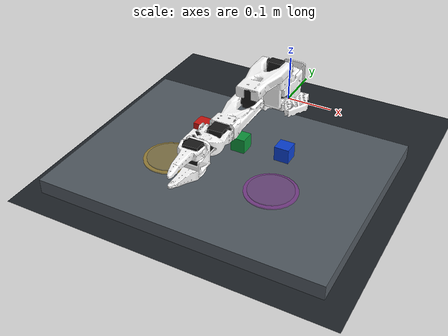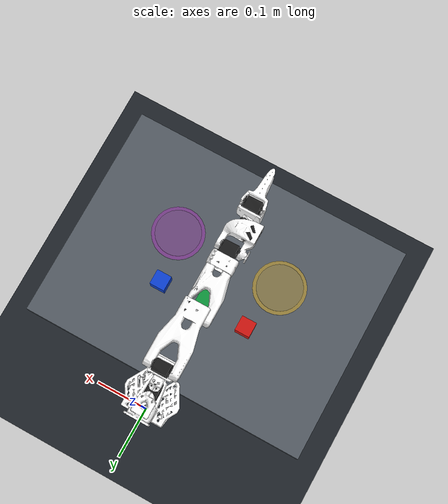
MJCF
<mujoco model="SO-ARM100 language pick-place">
  <include file="so_arm100.xml"/>

  <option timestep="0.002" integrator="implicitfast" gravity="0 0 -9.81">
    <flag contact="enable"/>
  </option>

  <visual>
    <headlight diffuse="0.55 0.55 0.55" ambient="0.25 0.25 0.25" specular="0.1 0.1 0.1"/>
    <global offwidth="256" offheight="256"/>
  </visual>

  <asset>
    <texture name="sky" type="skybox" builtin="gradient"
      rgb1="0.50 0.62 0.72" rgb2="0.94 0.96 0.98" width="256" height="1536"/>
    <texture name="table_tex" type="2d" builtin="checker" mark="edge"
      rgb1="0.28 0.31 0.34" rgb2="0.36 0.39 0.42" markrgb="0.08 0.08 0.08"
      width="256" height="256"/>
    <material name="table_mat" texture="table_tex" texrepeat="4 4" texuniform="true"
      roughness="0.8"/>
    <material name="red_mat" rgba="0.80 0.08 0.06 1" roughness="0.65"/>
    <material name="green_mat" rgba="0.05 0.58 0.23 1" roughness="0.65"/>
    <material name="blue_mat" rgba="0.04 0.25 0.82 1" roughness="0.65"/>
    <material name="left_goal_mat" rgba="0.95 0.72 0.08 0.45"/>
    <material name="right_goal_mat" rgba="0.68 0.14 0.76 0.45"/>
  </asset>

  <default>
    <default class="task_cube">
      <geom type="box" size="0.015 0.015 0.015" mass="0.025"
        friction="1.3 0.01 0.001" solref="0.008 1" solimp="0.95 0.99 0.001"/>
    </default>
  </default>

  <worldbody>
    <light name="key_light" pos="-0.25 -0.20 0.65" dir="0.3 -0.1 -1"
      directional="true" diffuse="0.75 0.72 0.68"/>
    <light name="fill_light" pos="0.35 -0.45 0.45" dir="-0.4 0.3 -0.8"
      directional="true" diffuse="0.35 0.40 0.48"/>
    <camera name="front" pos="0 -0.72 0.53" xyaxes="1 0 0 0 0.69 0.724"
      fovy="52"/>
    <camera name="wrist_view" pos="0 -0.45 0.20" xyaxes="1 0 0 0 0.45 0.89"
      fovy="55"/>

    <geom name="floor" type="plane" size="1 1 0.05" pos="0 0 -0.036"
      rgba="0.12 0.14 0.16 1" friction="1 0.005 0.0001"/>
    <geom name="table" type="box" size="0.29 0.22 0.015" pos="0 -0.275 -0.015"
      material="table_mat" friction="1.2 0.01 0.001"/>

    <geom name="left_goal" type="cylinder" size="0.052 0.0015"
      pos="-0.11 -0.32 0.002" material="left_goal_mat" contype="0" conaffinity="0"/>
    <geom name="right_goal" type="cylinder" size="0.052 0.0015"
      pos="0.11 -0.32 0.002" material="right_goal_mat" contype="0" conaffinity="0"/>
    <site name="left_goal_site" type="cylinder" size="0.045 0.002"
      pos="-0.11 -0.32 0.004" rgba="0.95 0.72 0.08 0.3"/>
    <site name="right_goal_site" type="cylinder" size="0.045 0.002"
      pos="0.11 -0.32 0.004" rgba="0.68 0.14 0.76 0.3"/>

    <body name="red_cube" pos="-0.09 -0.22 0.022">
      <freejoint name="red_cube_joint"/>
      <geom name="red_cube_geom" class="task_cube" material="red_mat"/>
    </body>
    <body name="green_cube" pos="0 -0.23 0.022">
      <freejoint name="green_cube_joint"/>
      <geom name="green_cube_geom" class="task_cube" material="green_mat"/>
    </body>
    <body name="blue_cube" pos="0.09 -0.22 0.022">
      <freejoint name="blue_cube_joint"/>
      <geom name="blue_cube_geom" class="task_cube" material="blue_mat"/>
    </body>
  </worldbody>

  <equality>
    <weld name="assist_red" body1="grasp_anchor" body2="red_cube"
      relpose="0 0 0 1 0 0 0" active="false" solref="0.02 1"/>
    <weld name="assist_green" body1="grasp_anchor" body2="green_cube"
      relpose="0 0 0 1 0 0 0" active="false" solref="0.02 1"/>
    <weld name="assist_blue" body1="grasp_anchor" body2="blue_cube"
      relpose="0 0 0 1 0 0 0" active="false" solref="0.02 1"/>
  </equality>
</mujoco>

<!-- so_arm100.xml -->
<mujoco model="so_arm100">
  <compiler angle="radian" meshdir="assets/"/>

  <option cone="elliptic" impratio="10"/>

  <asset>
    <material name="white" rgba="1 1 1 1"/>
    <material name="black" rgba="0.1 0.1 0.1 1"/>

    <mesh name="Base" file="Base.stl"/>
    <mesh name="Base_Motor" file="Base_Motor.stl"/>
    <mesh name="Rotation_Pitch" file="Rotation_Pitch.stl"/>
    <mesh name="Rotation_Pitch_Motor" file="Rotation_Pitch_Motor.stl"/>
    <mesh name="Upper_Arm" file="Upper_Arm.stl"/>
    <mesh name="Upper_Arm_Motor" file="Upper_Arm_Motor.stl"/>
    <mesh name="Lower_Arm" file="Lower_Arm.stl"/>
    <mesh name="Lower_Arm_Motor" file="Lower_Arm_Motor.stl"/>
    <mesh name="Wrist_Pitch_Roll" file="Wrist_Pitch_Roll.stl"/>
    <mesh name="Wrist_Pitch_Roll_Motor" file="Wrist_Pitch_Roll_Motor.stl"/>
    <mesh name="Fixed_Jaw" file="Fixed_Jaw.stl"/>
    <mesh name="Fixed_Jaw_Motor" file="Fixed_Jaw_Motor.stl"/>
    <mesh name="Fixed_Jaw_Collision_1" file="Fixed_Jaw_Collision_1.stl"/>
    <mesh name="Fixed_Jaw_Collision_2" file="Fixed_Jaw_Collision_2.stl"/>
    <mesh name="Moving_Jaw" file="Moving_Jaw.stl"/>
    <mesh name="Moving_Jaw_Collision_1" file="Moving_Jaw_Collision_1.stl"/>
    <mesh name="Moving_Jaw_Collision_2" file="Moving_Jaw_Collision_2.stl"/>
    <mesh name="Moving_Jaw_Collision_3" file="Moving_Jaw_Collision_3.stl"/>
  </asset>

  <default>
    <default class="so_arm100">
      <joint frictionloss="0.1" armature="0.1"/>
      <position kp="50" dampratio="1" forcerange="-3.5 3.5"/>
      <default class="Rotation">
        <joint axis="0 1 0" range="-1.92 1.92"/>
      </default>
      <default class="Pitch">
        <joint axis="1 0 0" range="-3.32 0.174"/>
      </default>
      <default class="Elbow">
        <joint axis="1 0 0" range="-0.174 3.14"/>
      </default>
      <default class="Wrist_Pitch">
        <joint axis="1 0 0" range="-1.66 1.66"/>
      </default>
      <default class="Wrist_Roll">
        <joint axis="0 1 0" range="-2.79 2.79"/>
      </default>
      <default class="Jaw">
        <joint axis="0 0 1" range="-0.174 1.75"/>
      </default>
      <default class="visual">
        <geom type="mesh" contype="0" conaffinity="0" density="0" group="2" material="white"/>
        <default class="motor_visual">
          <geom material="black"/>
        </default>
      </default>
      <default class="collision">
        <geom group="3" type="mesh" material="white"/>
        <default class="finger_collision">
          <geom type="box" solimp="2 1 0.01" solref="0.01 1" friction="1 0.005 0.0001"/>
        </default>
      </default>
    </default>
  </default>

  <worldbody>
    <body name="Base" childclass="so_arm100">
      <geom type="mesh" mesh="Base" class="visual"/>
      <geom type="mesh" mesh="Base_Motor" class="motor_visual"/>
      <geom type="mesh" mesh="Base" class="collision"/>
      <body name="Rotation_Pitch" pos="0 -0.0452 0.0165" quat="0.707105 0.707108 0 0">
        <inertial pos="-9.07886e-05 0.0590972 0.031089" quat="0.363978 0.441169 -0.623108 0.533504" mass="0.119226"
          diaginertia="5.94278e-05 5.89975e-05 3.13712e-05"/>
        <joint name="Rotation" class="Rotation"/>
        <geom type="mesh" mesh="Rotation_Pitch" class="visual"/>
        <geom type="mesh" mesh="Rotation_Pitch_Motor" class="motor_visual"/>
        <geom type="mesh" mesh="Rotation_Pitch" class="collision"/>
        <body name="Upper_Arm" pos="0 0.1025 0.0306" euler="1.57079 0 0">
          <inertial pos="-1.72052e-05 0.0701802 0.00310545" quat="0.50104 0.498994 -0.493562 0.50632" mass="0.162409"
            diaginertia="0.000213312 0.000167164 7.01522e-05"/>
          <joint name="Pitch" class="Pitch"/>
          <geom type="mesh" mesh="Upper_Arm" class="visual"/>
          <geom type="mesh" mesh="Upper_Arm_Motor" class="motor_visual"/>
          <geom type="mesh" mesh="Upper_Arm" class="collision"/>
          <body name="Lower_Arm" pos="0 0.11257 0.028" euler="-1.57079 0 0">
            <inertial pos="-0.00339604 0.00137796 0.0768007" quat="0.701995 0.0787996 0.0645626 0.704859"
              mass="0.147968" diaginertia="0.000138803 0.000107748 4.84242e-05"/>
            <joint name="Elbow" class="Elbow"/>
            <geom type="mesh" mesh="Lower_Arm" class="visual"/>
            <geom type="mesh" mesh="Lower_Arm_Motor" class="motor_visual"/>
            <geom type="mesh" mesh="Lower_Arm" class="collision"/>
            <body name="Wrist_Pitch_Roll" pos="0 0.0052 0.1349" euler="-1.57079 0 0">
              <inertial pos="-0.00852653 -0.0352279 -2.34622e-05" quat="-0.0522806 0.705235 0.0549524 0.704905"
                mass="0.0661321" diaginertia="3.45403e-05 2.39041e-05 1.94704e-05"/>
              <joint name="Wrist_Pitch" class="Wrist_Pitch"/>
              <geom type="mesh" mesh="Wrist_Pitch_Roll" class="visual"/>
              <geom type="mesh" mesh="Wrist_Pitch_Roll_Motor" class="motor_visual"/>
              <geom type="mesh" mesh="Wrist_Pitch_Roll" class="collision"/>
              <body name="Fixed_Jaw" pos="0 -0.0601 0" euler="0 1.57079 0">
                <inertial pos="0.00552377 -0.0280167 0.000483583" quat="0.41836 0.620891 -0.350644 0.562599"
                  mass="0.0929859" diaginertia="5.03136e-05 4.64098e-05 2.72961e-05"/>
                <site name="grip_site" pos="-0.011 -0.09 0" size="0.004" rgba="1 0.2 0.1 1"/>
                <body name="grasp_anchor" pos="-0.011 -0.09 0"/>
                <joint name="Wrist_Roll" class="Wrist_Roll"/>
                <geom type="mesh" mesh="Fixed_Jaw" class="visual"/>
                <geom type="mesh" mesh="Fixed_Jaw_Motor" class="motor_visual"/>
                <geom type="mesh" mesh="Fixed_Jaw_Collision_1" class="collision"/>
                <geom type="mesh" mesh="Fixed_Jaw_Collision_2" class="collision"/>
                <geom class="finger_collision" name="fixed_jaw_pad_1" size="0.001 0.005 0.004" pos="0.0089 -0.1014 0"/>
                <geom class="finger_collision" name="fixed_jaw_pad_2" size="0.001 0.005 0.006" pos="0.0109 -0.0914 0"/>
                <geom class="finger_collision" name="fixed_jaw_pad_3" size="0.001 0.01 0.007" pos="0.0126 -0.0768 0"/>
                <geom class="finger_collision" name="fixed_jaw_pad_4" size="0.001 0.01 0.008" pos="0.0143 -0.0572 0"/>
                <body name="Moving_Jaw" pos="-0.0202 -0.0244 0" quat="1.34924e-11 -3.67321e-06 1 -3.67321e-06">
                  <inertial pos="-0.00161745 -0.0303473 0.000449646" quat="0.696562 0.716737 -0.0239844 -0.0227026"
                    mass="0.0202444" diaginertia="1.11265e-05 8.99651e-06 2.99548e-06"/>
                  <joint name="Jaw" class="Jaw"/>
                  <geom type="mesh" mesh="Moving_Jaw" class="visual"/>
                  <geom type="mesh" mesh="Moving_Jaw_Collision_1" class="collision"/>
                  <geom type="mesh" mesh="Moving_Jaw_Collision_2" class="collision"/>
                  <geom type="mesh" mesh="Moving_Jaw_Collision_3" class="collision"/>
                  <geom class="finger_collision" name="moving_jaw_pad_1" size="0.001 0.005 0.004"
                    pos="-0.0113 -0.077 0"/>
                  <geom class="finger_collision" name="moving_jaw_pad_2" size="0.001 0.005 0.006"
                    pos="-0.0093 -0.067 0"/>
                  <geom class="finger_collision" name="moving_jaw_pad_3" size="0.001 0.01 0.006"
                    pos="-0.0073 -0.055 0"/>
                  <geom class="finger_collision" name="moving_jaw_pad_4" size="0.001 0.01 0.008"
                    pos="-0.0073 -0.035 0"/>
                </body>
              </body>
            </body>
          </body>
        </body>
      </body>
    </body>
  </worldbody>

  <actuator>
    <position class="Rotation" name="Rotation" joint="Rotation" inheritrange="1"/>
    <position class="Pitch" name="Pitch" joint="Pitch" inheritrange="1"/>
    <position class="Elbow" name="Elbow" joint="Elbow" inheritrange="1"/>
    <position class="Wrist_Pitch" name="Wrist_Pitch" joint="Wrist_Pitch" inheritrange="1"/>
    <position class="Wrist_Roll" name="Wrist_Roll" joint="Wrist_Roll" inheritrange="1"/>
    <position class="Jaw" name="Jaw" joint="Jaw" inheritrange="1"/>
  </actuator>

  <contact>
    <exclude body1="Base" body2="Rotation_Pitch"/>
  </contact>

  <keyframe>
    <key name="home" qpos="0 -1.57 1.57 1.57 -1.57 0" ctrl="0 -1.57 1.57 1.57 -1.57 0"/>
    <key name="rest" qpos="0 -3.32 3.11 1.18 0 -0.174" ctrl="0 -3.32 3.11 1.18 0 -0.174"/>
  </keyframe>
</mujoco>
